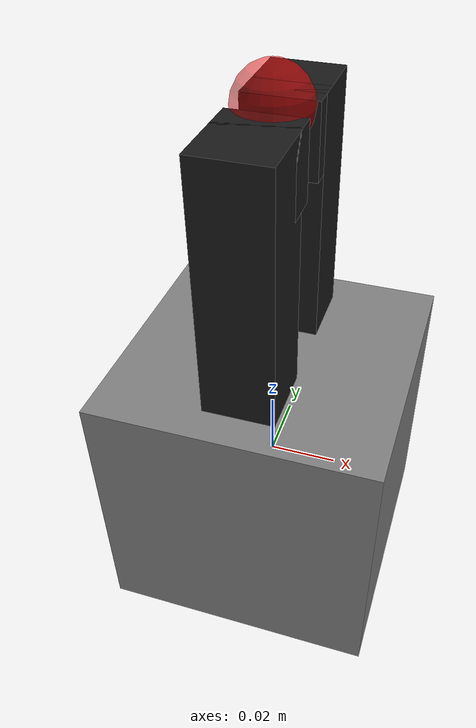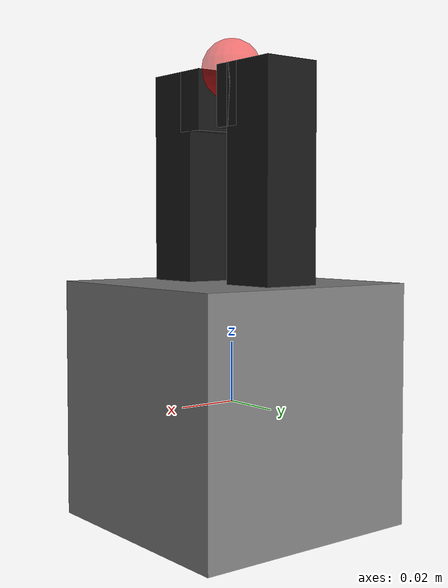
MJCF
<mujoco>
  <asset>
    <material name="gripper_mat" rgba="0.2 0.2 0.2 1"/>
    <material name="finger_mat" rgba="0.1 0.1 0.1 1"/>
  </asset>

  <default>
    <default class="gripper">
      <geom type="box" material="gripper_mat"/>
      <joint type="slide" range="0 0.05" armature="0.1" damping="10" limited="true"/>
      <default class="finger">
        <geom material="finger_mat"/>
      </default>
    </default>
  </default>

  <worldbody>
    <!-- Gripper Base -->
    <body name="gripper_base" pos="0 0 0" quat="1 0 0 0">
      <geom name="gripper_base_geom" size="0.04 0.04 0.04" type="box"/>

      <!-- Right Finger -->
      <body name="right_finger" pos="0 0.02 0.06">
        <joint name="right_driver" axis="0 1 0" class="gripper"/>
        <geom name="right_finger_geom" size="0.01 0.01 0.05" class="finger"/>
        <geom name="right_pad" pos="0 -0.01 0.04" size="0.01 0.005 0.01" class="finger"/>
      </body>

      <!-- Left Finger -->
      <body name="left_finger" pos="0 -0.02 0.06">
        <joint name="left_driver" axis="0 -1 0" class="gripper"/>
        <geom name="left_finger_geom" size="0.01 0.01 0.05" class="finger"/>
        <geom name="left_pad" pos="0 0.01 0.04" size="0.01 0.005 0.01" class="finger"/>
      </body>

      <!-- Pinch Site -->
      <site name="pinch_site" pos="0 0 0.11" size="0.01" rgba="1 0 0 0.5"/>
    </body>
  </worldbody>

  <actuator>
    <position name="gripper_open" joint="right_driver" kp="500" kv="20" ctrlrange="0 0.05"/>
    <position name="gripper_close" joint="left_driver" kp="500" kv="20" ctrlrange="0 0.05"/>
  </actuator>
</mujoco>
